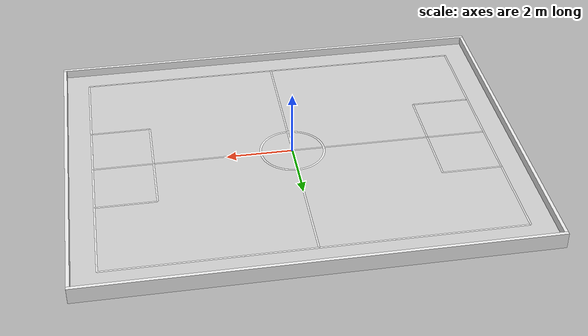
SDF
<?xml version="1.0" ?>
<sdf version="1.5">
  <model name="Robocup SSL Field">
    <static>true</static>
    <link name="field">
      <pose>0 0 0.01 0 0 0</pose>
      <collision name="collision">
        <geometry>
          <plane>
            <normal>0 0 1</normal>
            <size>13.40 10.40</size>
          </plane>
        </geometry>
        <surface>
          <friction>
            <ode>
              <mu>100</mu>
              <mu2>50</mu2>
            </ode>
          </friction>
        </surface>
      </collision>
      <visual name="carpet">
        <cast_shadows>false</cast_shadows>
        <geometry>
          <plane>
            <normal>0 0 1</normal>
            <size>13.40 10.40</size>
          </plane>
        </geometry>
        <material>
          <script>
            <uri>model://robocup09_spl_field/materials/scripts/</uri>
            <uri>model://robocup09_spl_field/materials/textures/</uri>
            <name>RoboCup/Carpet</name>
          </script>
        </material>
      </visual>
      <visual name="sideline_1">
        <pose>0 4.5 0.011 0 0 0</pose>
        <cast_shadows>false</cast_shadows>
        <geometry>
          <plane>
            <normal>0 0 1</normal>
            <size>12.00 0.05</size>
          </plane>
        </geometry>
        <material>
          <script>
            <uri>file://media/materials/scripts/gazebo.material</uri>
            <name>Gazebo/White</name>
          </script>
        </material>
      </visual>
      <visual name="sideline_2">
        <pose>0 -4.5 0.011 0 0 0</pose>
        <cast_shadows>false</cast_shadows>
        <geometry>
          <plane>
            <normal>0 0 1</normal>
            <size>12.00 0.05</size>
          </plane>
        </geometry>
        <material>
          <script>
            <uri>file://media/materials/scripts/gazebo.material</uri>
            <name>Gazebo/White</name>
          </script>
        </material>
      </visual>
      <visual name="sideline_mid">
        <pose>0 0 0.011 0 0 0</pose>
        <cast_shadows>false</cast_shadows>
        <geometry>
          <plane>
            <normal>0 0 1</normal>
            <size>12.00 0.05</size>
          </plane>
        </geometry>
        <material>
          <script>
            <uri>file://media/materials/scripts/gazebo.material</uri>
            <name>Gazebo/White</name>
          </script>
        </material>
      </visual>
      <visual name="endline_1">
        <pose>6 0 0.011 0 0 0</pose>
        <cast_shadows>false</cast_shadows>
        <geometry>
          <plane>
            <normal>0 0 1</normal>
            <size>0.05 9.00</size>
          </plane>
        </geometry>
        <material>
          <script>
            <uri>file://media/materials/scripts/gazebo.material</uri>
            <name>Gazebo/White</name>
          </script>
        </material>
      </visual>
      <visual name="endline_2">
        <pose>-6 0 0.011 0 0 0</pose>
        <cast_shadows>false</cast_shadows>
        <geometry>
          <plane>
            <normal>0 0 1</normal>
            <size>0.05 9.00</size>
          </plane>
        </geometry>
        <material>
          <script>
            <uri>file://media/materials/scripts/gazebo.material</uri>
            <name>Gazebo/White</name>
          </script>
        </material>
      </visual>
      <visual name="halfway_line">
        <pose>0 0 0.011 0 0 0</pose>
        <cast_shadows>false</cast_shadows>
        <geometry>
          <plane>
            <normal>0 0 1</normal>
            <size>0.05 9.00</size>
          </plane>
        </geometry>
        <material>
          <script>
            <uri>file://media/materials/scripts/gazebo.material</uri>
            <name>Gazebo/White</name>
          </script>
        </material>
      </visual>
      <visual name="area_1_line_a">
        <pose>-4.2 0 0.011 0 0 0</pose>
        <cast_shadows>false</cast_shadows>
        <geometry>
          <plane>
            <normal>0 0 1</normal>
            <size>0.05 3.6</size>
          </plane>
        </geometry>
        <material>
          <script>
            <uri>file://media/materials/scripts/gazebo.material</uri>
            <name>Gazebo/White</name>
          </script>
        </material>
      </visual>
      <visual name="area_2_line_a">
        <pose>-5.1 1.80 0.011 0 0 0</pose>
        <cast_shadows>false</cast_shadows>
        <geometry>
          <plane>
            <normal>0 0 1</normal>
            <size>1.80 0.05</size>
          </plane>
        </geometry>
        <material>
          <script>
            <uri>file://media/materials/scripts/gazebo.material</uri>
            <name>Gazebo/White</name>
          </script>
        </material>
      </visual>
      <visual name="area_3_line_a">
        <pose>-5.1 -1.80 0.011 0 0 0</pose>
        <cast_shadows>false</cast_shadows>
        <geometry>
          <plane>
            <normal>0 0 1</normal>
            <size>1.80 0.05</size>
          </plane>
        </geometry>
        <material>
          <script>
            <uri>file://media/materials/scripts/gazebo.material</uri>
            <name>Gazebo/White</name>
          </script>
        </material>
      </visual>
      <visual name="area_1_line_b">
        <pose>4.20 0 0.011 0 0 0</pose>
        <cast_shadows>false</cast_shadows>
        <geometry>
          <plane>
            <normal>0 0 1</normal>
            <size>0.05 3.6</size>
          </plane>
        </geometry>
        <material>
          <script>
            <uri>file://media/materials/scripts/gazebo.material</uri>
            <name>Gazebo/White</name>
          </script>
        </material>
      </visual>
      <visual name="area_2_line_b">
        <pose>5.1 1.80 0.011 0 0 0</pose>
        <cast_shadows>false</cast_shadows>
        <geometry>
          <plane>
            <normal>0 0 1</normal>
            <size>1.80 0.05</size>
          </plane>
        </geometry>
        <material>
          <script>
            <uri>file://media/materials/scripts/gazebo.material</uri>
            <name>Gazebo/White</name>
          </script>
        </material>
      </visual>
      <visual name="area_3_line_b">
        <pose>5.1 -1.80 0.011 0 0 0</pose>
        <cast_shadows>false</cast_shadows>
        <geometry>
          <plane>
            <normal>0 0 1</normal>
            <size>1.80 0.05</size>
          </plane>
        </geometry>
        <material>
          <script>
            <uri>file://media/materials/scripts/gazebo.material</uri>
            <name>Gazebo/White</name>
          </script>
        </material>
      </visual>

      <visual name="center_point">
        <pose>0 0 0.01 0 0 0</pose>
        <cast_shadows>false</cast_shadows>
        <geometry>
          <cylinder>
            <radius>0.05</radius>
            <length>0.0005</length>
          </cylinder>
        </geometry>
        <material>
          <script>
            <uri>file://media/materials/scripts/gazebo.material</uri>
            <name>Gazebo/White</name>
          </script>
        </material>
      </visual>
      <visual name="center_circle">
        <pose>0 0 0.005 0 0 0</pose>
        <cast_shadows>false</cast_shadows>
        <geometry>
          <mesh>
            <scale>1.3 1.3 0.75</scale>
            <uri>model://robocup14_spl_field/meshes/circle.dae</uri>
          </mesh>
        </geometry>
        <material>
          <script>
            <uri>file://media/materials/scripts/gazebo.material</uri>
            <name>Gazebo/White</name>
          </script>
        </material>
      </visual>
    </link>
    <link name="left_barrier">
      <pose>-6.75 0 0 0 0 0</pose>
      <collision name="collision">
        <geometry>
          <box>
            <size>0.1 10.4 0.5</size>
          </box>
        </geometry>
      </collision>
      <visual name="visual">
        <geometry>
          <box>
            <size>0.1 10.4 0.5</size>
          </box>
        </geometry>
        <material>
          <script>
            <uri>file://media/materials/scripts/gazebo.material</uri>
            <name>Gazebo/White</name>
          </script>
        </material>
      </visual>
    </link>
    <link name="right_barrier">
      <pose>6.75 0 0 0 0 0</pose>
      <collision name="collision">
        <geometry>
          <box>
            <size>0.1 10.4 0.5</size>
          </box>
        </geometry>
      </collision>
      <visual name="visual">
        <geometry>
          <box>
            <size>0.1 10.4 0.5</size>
          </box>
        </geometry>
        <material>
          <script>
            <uri>file://media/materials/scripts/gazebo.material</uri>
            <name>Gazebo/White</name>
          </script>
        </material>
      </visual>
    </link>
    <link name="front_barrier">
      <pose>0 5.25 0 0 0 0</pose>
      <collision name="collision">
        <geometry>
          <box>
            <size>13.6 0.1 0.5</size>
          </box>
        </geometry>
      </collision>
      <visual name="visual">
        <geometry>
          <box>
            <size>13.6 0.1 0.5</size>
          </box>
        </geometry>
        <material>
          <script>
            <uri>file://media/materials/scripts/gazebo.material</uri>
            <name>Gazebo/White</name>
          </script>
        </material>
      </visual>
    </link>
    <link name="back_barrier">
      <pose>0 -5.25 0 0 0 0</pose>
      <collision name="collision">
        <geometry>
          <box>
            <size>13.6 0.1 0.5</size>
          </box>
        </geometry>
      </collision>
      <visual name="visual">
        <geometry>
          <box>
            <size>13.6 0.1 0.5</size>
          </box>
        </geometry>
        <material>
          <script>
            <uri>file://media/materials/scripts/gazebo.material</uri>
            <name>Gazebo/White</name>
          </script>
        </material>
      </visual>
    </link>
  </model>
</sdf>
